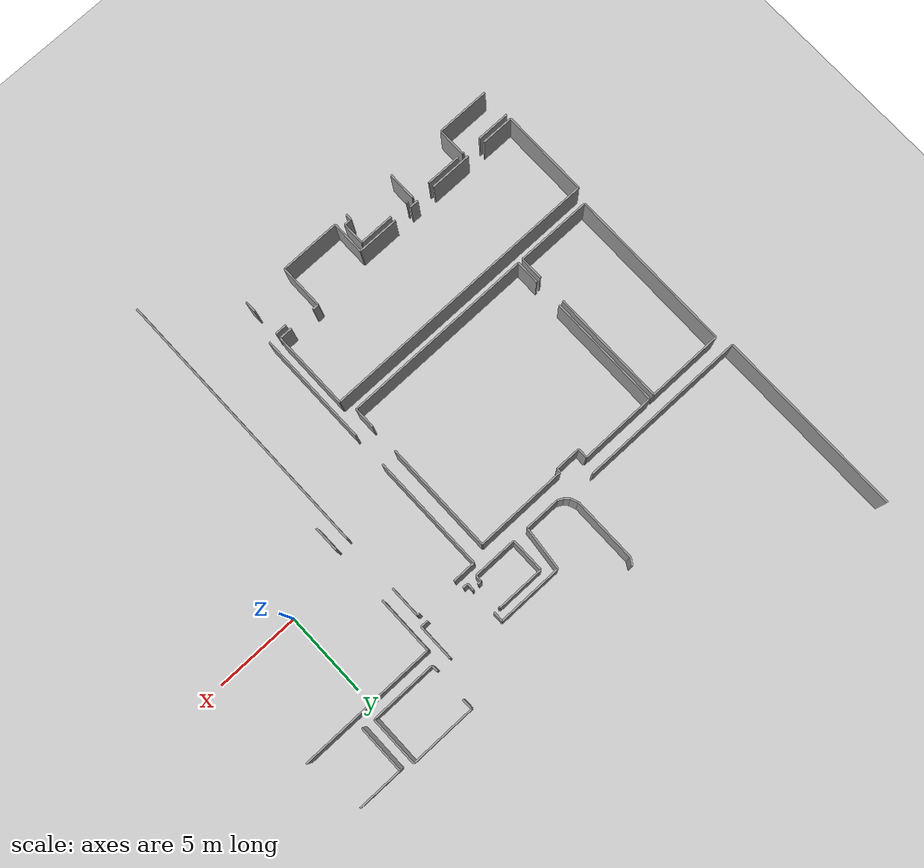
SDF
<sdf version="1.6">
 <world name="default">
  <model name="ground_plane">
   <static>1</static>
   <link name="link">
    <collision name="collision">
     <geometry><plane><normal>0 0 1</normal><size>100 100</size></plane></geometry>
     <surface><friction><ode><mu>100</mu><mu2>50</mu2></ode></friction></surface>
    </collision>
    <visual name="visual">
     <cast_shadows>0</cast_shadows>
     <geometry><plane><normal>0 0 1</normal><size>100 100</size></plane></geometry>
     <material>
      <script><uri>file://media/materials/scripts/gazebo.material</uri><name>Gazebo/Grey</name></script>
     </material>
    </visual>
   </link>
  </model>
  <model name="0510045925_40">
   <static>1</static>
   <link name="Wall_719">
    <collision name="Wall_719_Collision">
     <geometry><box><size>11.333976295 0.1 2.5</size></box></geometry>
     <pose>5.66698814751 0 1.25 0 0 0</pose>
    </collision>
    <visual name="Wall_719_Visual">
     <pose>5.66698814751 0 1.25 0 0 0</pose>
     <geometry><box><size>11.333976295 0.1 2.5</size></box></geometry>
     <material>
      <script><uri>file://media/materials/scripts/gazebo.material</uri><name>Gazebo/Grey</name></script>
      <ambient>1 1 1 1</ambient>
     </material>
    </visual>
    <pose>107.627775945 -95.8355625492 0 0 0 1.57079632679</pose>
   </link>
   <link name="Wall_730">
    <collision name="Wall_730_Collision">
     <geometry><box><size>10.0053723855 0.1 2.5</size></box></geometry>
     <pose>5.00268619273 0 1.25 0 0 0</pose>
    </collision>
    <visual name="Wall_730_Visual">
     <pose>5.00268619273 0 1.25 0 0 0</pose>
     <geometry><box><size>10.0053723855 0.1 2.5</size></box></geometry>
     <material>
      <script><uri>file://media/materials/scripts/gazebo.material</uri><name>Gazebo/Grey</name></script>
      <ambient>1 1 1 1</ambient>
     </material>
    </visual>
    <pose>117.633105759 -95.8647496256 0 0 0 3.13867550901</pose>
   </link>
   <link name="Wall_869">
    <collision name="Wall_869_Collision">
     <geometry><box><size>2.08624146595 0.1 2.5</size></box></geometry>
     <pose>1.04312073298 0 1.25 0 0 0</pose>
    </collision>
    <visual name="Wall_869_Visual">
     <pose>1.04312073298 0 1.25 0 0 0</pose>
     <geometry><box><size>2.08624146595 0.1 2.5</size></box></geometry>
     <material>
      <script><uri>file://media/materials/scripts/gazebo.material</uri><name>Gazebo/Grey</name></script>
      <ambient>1 1 1 1</ambient>
     </material>
    </visual>
    <pose>122.008375422 -96.104591254 0 0 0 3.14159265359</pose>
   </link>
   <link name="Wall_870">
    <collision name="Wall_870_Collision">
     <geometry><box><size>0.365606354794 0.1 2.5</size></box></geometry>
     <pose>0.182803177397 0 1.25 0 0 0</pose>
    </collision>
    <visual name="Wall_870_Visual">
     <pose>0.182803177397 0 1.25 0 0 0</pose>
     <geometry><box><size>0.365606354794 0.1 2.5</size></box></geometry>
     <material>
      <script><uri>file://media/materials/scripts/gazebo.material</uri><name>Gazebo/Grey</name></script>
      <ambient>1 1 1 1</ambient>
     </material>
    </visual>
    <pose>119.922133956 -96.104591254 0 0 0 2.66956275101</pose>
   </link>
   <link name="Wall_871">
    <collision name="Wall_871_Collision">
     <geometry><box><size>0.332547157772 0.1 2.5</size></box></geometry>
     <pose>0.166273578886 0 1.25 0 0 0</pose>
    </collision>
    <visual name="Wall_871_Visual">
     <pose>0.166273578886 0 1.25 0 0 0</pose>
     <geometry><box><size>0.332547157772 0.1 2.5</size></box></geometry>
     <material>
      <script><uri>file://media/materials/scripts/gazebo.material</uri><name>Gazebo/Grey</name></script>
      <ambient>1 1 1 1</ambient>
     </material>
    </visual>
    <pose>119.596507703 -95.9383518185 0 0 0 2.35673415555</pose>
   </link>
   <link name="Wall_872">
    <collision name="Wall_872_Collision">
     <geometry><box><size>0.451823995962 0.1 2.5</size></box></geometry>
     <pose>0.225911997981 0 1.25 0 0 0</pose>
    </collision>
    <visual name="Wall_872_Visual">
     <pose>0.225911997981 0 1.25 0 0 0</pose>
     <geometry><box><size>0.451823995962 0.1 2.5</size></box></geometry>
     <material>
      <script><uri>file://media/materials/scripts/gazebo.material</uri><name>Gazebo/Grey</name></script>
      <ambient>1 1 1 1</ambient>
     </material>
    </visual>
    <pose>119.361234486 -95.7033324027 0 0 0 1.96455041623</pose>
   </link>
   <link name="Wall_873">
    <collision name="Wall_873_Collision">
     <geometry><box><size>3.82959823355 0.1 2.5</size></box></geometry>
     <pose>1.91479911677 0 1.25 0 0 0</pose>
    </collision>
    <visual name="Wall_873_Visual">
     <pose>1.91479911677 0 1.25 0 0 0</pose>
     <geometry><box><size>3.82959823355 0.1 2.5</size></box></geometry>
     <material>
      <script><uri>file://media/materials/scripts/gazebo.material</uri><name>Gazebo/Grey</name></script>
      <ambient>1 1 1 1</ambient>
     </material>
    </visual>
    <pose>119.187888632 -95.2860841095 0 0 0 1.57079632679</pose>
   </link>
   <link name="Wall_874">
    <collision name="Wall_874_Collision">
     <geometry><box><size>0.487473385201 0.1 2.5</size></box></geometry>
     <pose>0.243736692601 0 1.25 0 0 0</pose>
    </collision>
    <visual name="Wall_874_Visual">
     <pose>0.243736692601 0 1.25 0 0 0</pose>
     <geometry><box><size>0.487473385201 0.1 2.5</size></box></geometry>
     <material>
      <script><uri>file://media/materials/scripts/gazebo.material</uri><name>Gazebo/Grey</name></script>
      <ambient>1 1 1 1</ambient>
     </material>
    </visual>
    <pose>119.187888632 -91.456485876 0 0 0 1.03957381696</pose>
   </link>
   <link name="Wall_880">
    <collision name="Wall_880_Collision">
     <geometry><box><size>2.16085886145 0.1 2.5</size></box></geometry>
     <pose>1.08042943073 0 1.25 0 0 0</pose>
    </collision>
    <visual name="Wall_880_Visual">
     <pose>1.08042943073 0 1.25 0 0 0</pose>
     <geometry><box><size>2.16085886145 0.1 2.5</size></box></geometry>
     <material>
      <script><uri>file://media/materials/scripts/gazebo.material</uri><name>Gazebo/Grey</name></script>
      <ambient>1 1 1 1</ambient>
     </material>
    </visual>
    <pose>129.345752646 -93.934341768 0 0 0 -1.57079632679</pose>
   </link>
   <link name="Wall_881">
    <collision name="Wall_881_Collision">
     <geometry><box><size>0.443389761681 0.1 2.5</size></box></geometry>
     <pose>0.221694880841 0 1.25 0 0 0</pose>
    </collision>
    <visual name="Wall_881_Visual">
     <pose>0.221694880841 0 1.25 0 0 0</pose>
     <geometry><box><size>0.443389761681 0.1 2.5</size></box></geometry>
     <material>
      <script><uri>file://media/materials/scripts/gazebo.material</uri><name>Gazebo/Grey</name></script>
      <ambient>1 1 1 1</ambient>
     </material>
    </visual>
    <pose>129.345752646 -96.0952006294 0 0 0 3.14159265359</pose>
   </link>
   <link name="Wall_882">
    <collision name="Wall_882_Collision">
     <geometry><box><size>0.309636811248 0.1 2.5</size></box></geometry>
     <pose>0.154818405624 0 1.25 0 0 0</pose>
    </collision>
    <visual name="Wall_882_Visual">
     <pose>0.154818405624 0 1.25 0 0 0</pose>
     <geometry><box><size>0.309636811248 0.1 2.5</size></box></geometry>
     <material>
      <script><uri>file://media/materials/scripts/gazebo.material</uri><name>Gazebo/Grey</name></script>
      <ambient>1 1 1 1</ambient>
     </material>
    </visual>
    <pose>126.469683511 -96.0952006294 0 0 0 3.14159265359</pose>
   </link>
   <link name="Wall_883">
    <collision name="Wall_883_Collision">
     <geometry><box><size>0.429176924444 0.1 2.5</size></box></geometry>
     <pose>0.214588462222 0 1.25 0 0 0</pose>
    </collision>
    <visual name="Wall_883_Visual">
     <pose>0.214588462222 0 1.25 0 0 0</pose>
     <geometry><box><size>0.429176924444 0.1 2.5</size></box></geometry>
     <material>
      <script><uri>file://media/materials/scripts/gazebo.material</uri><name>Gazebo/Grey</name></script>
      <ambient>1 1 1 1</ambient>
     </material>
    </visual>
    <pose>126.160046699 -96.0952006294 0 0 0 1.57079632679</pose>
   </link>
   <link name="Wall_884">
    <collision name="Wall_884_Collision">
     <geometry><box><size>0.60252277861 0.1 2.5</size></box></geometry>
     <pose>0.301261389305 0 1.25 0 0 0</pose>
    </collision>
    <visual name="Wall_884_Visual">
     <pose>0.301261389305 0 1.25 0 0 0</pose>
     <geometry><box><size>0.60252277861 0.1 2.5</size></box></geometry>
     <material>
      <script><uri>file://media/materials/scripts/gazebo.material</uri><name>Gazebo/Grey</name></script>
      <ambient>1 1 1 1</ambient>
     </material>
    </visual>
    <pose>126.160046699 -94.1317986853 0 0 0 1.57079632679</pose>
   </link>
   <link name="Wall_885">
    <collision name="Wall_885_Collision">
     <geometry><box><size>3.87325194792 0.1 2.5</size></box></geometry>
     <pose>1.93662597396 0 1.25 0 0 0</pose>
    </collision>
    <visual name="Wall_885_Visual">
     <pose>1.93662597396 0 1.25 0 0 0</pose>
     <geometry><box><size>3.87325194792 0.1 2.5</size></box></geometry>
     <material>
      <script><uri>file://media/materials/scripts/gazebo.material</uri><name>Gazebo/Grey</name></script>
      <ambient>1 1 1 1</ambient>
     </material>
    </visual>
    <pose>126.160046699 -93.5292759067 0 0 0 3.14159265359</pose>
   </link>
   <link name="Wall_886">
    <collision name="Wall_886_Collision">
     <geometry><box><size>2.59032169068 0.1 2.5</size></box></geometry>
     <pose>1.29516084534 0 1.25 0 0 0</pose>
    </collision>
    <visual name="Wall_886_Visual">
     <pose>1.29516084534 0 1.25 0 0 0</pose>
     <geometry><box><size>2.59032169068 0.1 2.5</size></box></geometry>
     <material>
      <script><uri>file://media/materials/scripts/gazebo.material</uri><name>Gazebo/Grey</name></script>
      <ambient>1 1 1 1</ambient>
     </material>
    </visual>
    <pose>122.286794751 -93.5292759067 0 0 0 -1.67848883041</pose>
   </link>
   <link name="Wall_887">
    <collision name="Wall_887_Collision">
     <geometry><box><size>2.01720768508 0.1 2.5</size></box></geometry>
     <pose>1.00860384254 0 1.25 0 0 0</pose>
    </collision>
    <visual name="Wall_887_Visual">
     <pose>1.00860384254 0 1.25 0 0 0</pose>
     <geometry><box><size>2.01720768508 0.1 2.5</size></box></geometry>
     <material>
      <script><uri>file://media/materials/scripts/gazebo.material</uri><name>Gazebo/Grey</name></script>
      <ambient>1 1 1 1</ambient>
     </material>
    </visual>
    <pose>122.95809751 -96.102307048 0 0 0 1.57079632679</pose>
   </link>
   <link name="Wall_888">
    <collision name="Wall_888_Collision">
     <geometry><box><size>2.8362224309 0.1 2.5</size></box></geometry>
     <pose>1.41811121545 0 1.25 0 0 0</pose>
    </collision>
    <visual name="Wall_888_Visual">
     <pose>1.41811121545 0 1.25 0 0 0</pose>
     <geometry><box><size>2.8362224309 0.1 2.5</size></box></geometry>
     <material>
      <script><uri>file://media/materials/scripts/gazebo.material</uri><name>Gazebo/Grey</name></script>
      <ambient>1 1 1 1</ambient>
     </material>
    </visual>
    <pose>122.95809751 -94.085099363 0 0 0 0.0</pose>
   </link>
   <link name="Wall_889">
    <collision name="Wall_889_Collision">
     <geometry><box><size>0.0936524453694 0.1 2.5</size></box></geometry>
     <pose>0.0468262226847 0 1.25 0 0 0</pose>
    </collision>
    <visual name="Wall_889_Visual">
     <pose>0.0468262226847 0 1.25 0 0 0</pose>
     <geometry><box><size>0.0936524453694 0.1 2.5</size></box></geometry>
     <material>
      <script><uri>file://media/materials/scripts/gazebo.material</uri><name>Gazebo/Grey</name></script>
      <ambient>1 1 1 1</ambient>
     </material>
    </visual>
    <pose>125.794319941 -94.085099363 0 0 0 -1.57079632679</pose>
   </link>
   <link name="Wall_890">
    <collision name="Wall_890_Collision">
     <geometry><box><size>0.218268571864 0.1 2.5</size></box></geometry>
     <pose>0.109134285932 0 1.25 0 0 0</pose>
    </collision>
    <visual name="Wall_890_Visual">
     <pose>0.109134285932 0 1.25 0 0 0</pose>
     <geometry><box><size>0.218268571864 0.1 2.5</size></box></geometry>
     <material>
      <script><uri>file://media/materials/scripts/gazebo.material</uri><name>Gazebo/Grey</name></script>
      <ambient>1 1 1 1</ambient>
     </material>
    </visual>
    <pose>125.794319941 -95.7170376386 0 0 0 3.14159265359</pose>
   </link>
   <link name="Wall_891">
    <collision name="Wall_891_Collision">
     <geometry><box><size>0.392883429355 0.1 2.5</size></box></geometry>
     <pose>0.196441714677 0 1.25 0 0 0</pose>
    </collision>
    <visual name="Wall_891_Visual">
     <pose>0.196441714677 0 1.25 0 0 0</pose>
     <geometry><box><size>0.392883429355 0.1 2.5</size></box></geometry>
     <material>
      <script><uri>file://media/materials/scripts/gazebo.material</uri><name>Gazebo/Grey</name></script>
      <ambient>1 1 1 1</ambient>
     </material>
    </visual>
    <pose>125.576051369 -95.7170376386 0 0 0 -1.57079632679</pose>
   </link>
   <link name="Wall_892">
    <collision name="Wall_892_Collision">
     <geometry><box><size>2.61796493127 0.1 2.5</size></box></geometry>
     <pose>1.30898246563 0 1.25 0 0 0</pose>
    </collision>
    <visual name="Wall_892_Visual">
     <pose>1.30898246563 0 1.25 0 0 0</pose>
     <geometry><box><size>2.61796493127 0.1 2.5</size></box></geometry>
     <material>
      <script><uri>file://media/materials/scripts/gazebo.material</uri><name>Gazebo/Grey</name></script>
      <ambient>1 1 1 1</ambient>
     </material>
    </visual>
    <pose>125.576051369 -96.109921068 0 0 0 3.13868427594</pose>
   </link>
   <link name="Wall_893">
    <collision name="Wall_893_Collision">
     <geometry><box><size>3.90827643968 0.1 2.5</size></box></geometry>
     <pose>1.95413821984 0 1.25 0 0 0</pose>
    </collision>
    <visual name="Wall_893_Visual">
     <pose>1.95413821984 0 1.25 0 0 0</pose>
     <geometry><box><size>3.90827643968 0.1 2.5</size></box></geometry>
     <material>
      <script><uri>file://media/materials/scripts/gazebo.material</uri><name>Gazebo/Grey</name></script>
      <ambient>1 1 1 1</ambient>
     </material>
    </visual>
    <pose>130.250552016 -91.3686708459 0 0 0 0.0</pose>
   </link>
   <link name="Wall_894">
    <collision name="Wall_894_Collision">
     <geometry><box><size>2.93190528159 0.1 2.5</size></box></geometry>
     <pose>1.4659526408 0 1.25 0 0 0</pose>
    </collision>
    <visual name="Wall_894_Visual">
     <pose>1.4659526408 0 1.25 0 0 0</pose>
     <geometry><box><size>2.93190528159 0.1 2.5</size></box></geometry>
     <material>
      <script><uri>file://media/materials/scripts/gazebo.material</uri><name>Gazebo/Grey</name></script>
      <ambient>1 1 1 1</ambient>
     </material>
    </visual>
    <pose>134.158828456 -91.3686708459 0 0 0 -1.57079632679</pose>
   </link>
   <link name="Wall_895">
    <collision name="Wall_895_Collision">
     <geometry><box><size>3.90751503769 0.1 2.5</size></box></geometry>
     <pose>1.95375751884 0 1.25 0 0 0</pose>
    </collision>
    <visual name="Wall_895_Visual">
     <pose>1.95375751884 0 1.25 0 0 0</pose>
     <geometry><box><size>3.90751503769 0.1 2.5</size></box></geometry>
     <material>
      <script><uri>file://media/materials/scripts/gazebo.material</uri><name>Gazebo/Grey</name></script>
      <ambient>1 1 1 1</ambient>
     </material>
    </visual>
    <pose>134.158828456 -94.3005761275 0 0 0 3.14159265359</pose>
   </link>
   <link name="Wall_896">
    <collision name="Wall_896_Collision">
     <geometry><box><size>0.383746605416 0.1 2.5</size></box></geometry>
     <pose>0.191873302708 0 1.25 0 0 0</pose>
    </collision>
    <visual name="Wall_896_Visual">
     <pose>0.191873302708 0 1.25 0 0 0</pose>
     <geometry><box><size>0.383746605416 0.1 2.5</size></box></geometry>
     <material>
      <script><uri>file://media/materials/scripts/gazebo.material</uri><name>Gazebo/Grey</name></script>
      <ambient>1 1 1 1</ambient>
     </material>
    </visual>
    <pose>130.251313418 -94.3005761275 0 0 0 1.57079632679</pose>
   </link>
   <link name="Wall_897">
    <collision name="Wall_897_Collision">
     <geometry><box><size>0.649222547445 0.1 2.5</size></box></geometry>
     <pose>0.324611273722 0 1.25 0 0 0</pose>
    </collision>
    <visual name="Wall_897_Visual">
     <pose>0.324611273722 0 1.25 0 0 0</pose>
     <geometry><box><size>0.649222547445 0.1 2.5</size></box></geometry>
     <material>
      <script><uri>file://media/materials/scripts/gazebo.material</uri><name>Gazebo/Grey</name></script>
      <ambient>1 1 1 1</ambient>
     </material>
    </visual>
    <pose>130.251313418 -92.0178929469 0 0 0 1.5719691175</pose>
   </link>
   <link name="Wall_898">
    <collision name="Wall_898_Collision">
     <geometry><box><size>2.8471358595 0.1 2.5</size></box></geometry>
     <pose>1.42356792975 0 1.25 0 0 0</pose>
    </collision>
    <visual name="Wall_898_Visual">
     <pose>1.42356792975 0 1.25 0 0 0</pose>
     <geometry><box><size>2.8471358595 0.1 2.5</size></box></geometry>
     <material>
      <script><uri>file://media/materials/scripts/gazebo.material</uri><name>Gazebo/Grey</name></script>
      <ambient>1 1 1 1</ambient>
     </material>
    </visual>
    <pose>134.890028172 -94.4264612573 0 0 0 1.57079632679</pose>
   </link>
   <link name="Wall_899">
    <collision name="Wall_899_Collision">
     <geometry><box><size>2.66236897541 0.1 2.5</size></box></geometry>
     <pose>1.3311844877 0 1.25 0 0 0</pose>
    </collision>
    <visual name="Wall_899_Visual">
     <pose>1.3311844877 0 1.25 0 0 0</pose>
     <geometry><box><size>2.66236897541 0.1 2.5</size></box></geometry>
     <material>
      <script><uri>file://media/materials/scripts/gazebo.material</uri><name>Gazebo/Grey</name></script>
      <ambient>1 1 1 1</ambient>
     </material>
    </visual>
    <pose>134.890028172 -91.5793253978 0 0 0 0.0</pose>
   </link>
   <link name="Wall_916">
    <collision name="Wall_916_Collision">
     <geometry><box><size>1.51671277379 0.1 2.5</size></box></geometry>
     <pose>0.758356386894 0 1.25 0 0 0</pose>
    </collision>
    <visual name="Wall_916_Visual">
     <pose>0.758356386894 0 1.25 0 0 0</pose>
     <geometry><box><size>1.51671277379 0.1 2.5</size></box></geometry>
     <material>
      <script><uri>file://media/materials/scripts/gazebo.material</uri><name>Gazebo/Grey</name></script>
      <ambient>1 1 1 1</ambient>
     </material>
    </visual>
    <pose>129.896753889 -103.425471435 0 0 0 1.57079632679</pose>
   </link>
   <link name="Wall_917">
    <collision name="Wall_917_Collision">
     <geometry><box><size>3.42605517626 0.1 2.5</size></box></geometry>
     <pose>1.71302758813 0 1.25 0 0 0</pose>
    </collision>
    <visual name="Wall_917_Visual">
     <pose>1.71302758813 0 1.25 0 0 0</pose>
     <geometry><box><size>3.42605517626 0.1 2.5</size></box></geometry>
     <material>
      <script><uri>file://media/materials/scripts/gazebo.material</uri><name>Gazebo/Grey</name></script>
      <ambient>1 1 1 1</ambient>
     </material>
    </visual>
    <pose>129.896753889 -98.4240755311 0 0 0 1.57079632679</pose>
   </link>
   <link name="Wall_918">
    <collision name="Wall_918_Collision">
     <geometry><box><size>8.1733966143 0.1 2.5</size></box></geometry>
     <pose>4.08669830715 0 1.25 0 0 0</pose>
    </collision>
    <visual name="Wall_918_Visual">
     <pose>4.08669830715 0 1.25 0 0 0</pose>
     <geometry><box><size>8.1733966143 0.1 2.5</size></box></geometry>
     <material>
      <script><uri>file://media/materials/scripts/gazebo.material</uri><name>Gazebo/Grey</name></script>
      <ambient>1 1 1 1</ambient>
     </material>
    </visual>
    <pose>129.896753889 -94.9980203548 0 0 0 0.0</pose>
   </link>
   <link name="Wall_1004">
    <collision name="Wall_1004_Collision">
     <geometry><box><size>9.95812289028 0.1 2.5</size></box></geometry>
     <pose>4.97906144514 0 1.25 0 0 0</pose>
    </collision>
    <visual name="Wall_1004_Visual">
     <pose>4.97906144514 0 1.25 0 0 0</pose>
     <geometry><box><size>9.95812289028 0.1 2.5</size></box></geometry>
     <material>
      <script><uri>file://media/materials/scripts/gazebo.material</uri><name>Gazebo/Grey</name></script>
      <ambient>1 1 1 1</ambient>
     </material>
    </visual>
    <pose>107.972944849 -106.659653308 0 0 0 1.57079632679</pose>
   </link>
   <link name="Wall_1005">
    <collision name="Wall_1005_Collision">
     <geometry><box><size>4.50140859369 0.1 2.5</size></box></geometry>
     <pose>2.25070429685 0 1.25 0 0 0</pose>
    </collision>
    <visual name="Wall_1005_Visual">
     <pose>2.25070429685 0 1.25 0 0 0</pose>
     <geometry><box><size>4.50140859369 0.1 2.5</size></box></geometry>
     <material>
      <script><uri>file://media/materials/scripts/gazebo.material</uri><name>Gazebo/Grey</name></script>
      <ambient>1 1 1 1</ambient>
     </material>
    </visual>
    <pose>107.972944849 -96.701530418 0 0 0 0.0</pose>
   </link>
   <link name="Wall_1006">
    <collision name="Wall_1006_Collision">
     <geometry><box><size>6.86936879775 0.1 2.5</size></box></geometry>
     <pose>3.43468439887 0 1.25 0 0 0</pose>
    </collision>
    <visual name="Wall_1006_Visual">
     <pose>3.43468439887 0 1.25 0 0 0</pose>
     <geometry><box><size>6.86936879775 0.1 2.5</size></box></geometry>
     <material>
      <script><uri>file://media/materials/scripts/gazebo.material</uri><name>Gazebo/Grey</name></script>
      <ambient>1 1 1 1</ambient>
     </material>
    </visual>
    <pose>112.474353443 -96.701530418 0 0 0 -1.57079632679</pose>
   </link>
   <link name="Wall_1007">
    <collision name="Wall_1007_Collision">
     <geometry><box><size>1.37356919875 0.1 2.5</size></box></geometry>
     <pose>0.686784599376 0 1.25 0 0 0</pose>
    </collision>
    <visual name="Wall_1007_Visual">
     <pose>0.686784599376 0 1.25 0 0 0</pose>
     <geometry><box><size>1.37356919875 0.1 2.5</size></box></geometry>
     <material>
      <script><uri>file://media/materials/scripts/gazebo.material</uri><name>Gazebo/Grey</name></script>
      <ambient>1 1 1 1</ambient>
     </material>
    </visual>
    <pose>112.474353443 -105.290906322 0 0 0 -1.57079632679</pose>
   </link>
   <link name="Wall_1008">
    <collision name="Wall_1008_Collision">
     <geometry><box><size>4.50141117663 0.1 2.5</size></box></geometry>
     <pose>2.25070558831 0 1.25 0 0 0</pose>
    </collision>
    <visual name="Wall_1008_Visual">
     <pose>2.25070558831 0 1.25 0 0 0</pose>
     <geometry><box><size>4.50141117663 0.1 2.5</size></box></geometry>
     <material>
      <script><uri>file://media/materials/scripts/gazebo.material</uri><name>Gazebo/Grey</name></script>
      <ambient>1 1 1 1</ambient>
     </material>
    </visual>
    <pose>112.474353443 -106.664475521 0 0 0 3.14052138652</pose>
   </link>
   <link name="Wall_1009">
    <collision name="Wall_1009_Collision">
     <geometry><box><size>1.41773051445 0.1 2.5</size></box></geometry>
     <pose>0.708865257227 0 1.25 0 0 0</pose>
    </collision>
    <visual name="Wall_1009_Visual">
     <pose>0.708865257227 0 1.25 0 0 0</pose>
     <geometry><box><size>1.41773051445 0.1 2.5</size></box></geometry>
     <material>
      <script><uri>file://media/materials/scripts/gazebo.material</uri><name>Gazebo/Grey</name></script>
      <ambient>1 1 1 1</ambient>
     </material>
    </visual>
    <pose>112.772315423 -106.663714119 0 0 0 1.57079632679</pose>
   </link>
   <link name="Wall_1010">
    <collision name="Wall_1010_Collision">
     <geometry><box><size>6.83688231263 0.1 2.5</size></box></geometry>
     <pose>3.41844115632 0 1.25 0 0 0</pose>
    </collision>
    <visual name="Wall_1010_Visual">
     <pose>3.41844115632 0 1.25 0 0 0</pose>
     <geometry><box><size>6.83688231263 0.1 2.5</size></box></geometry>
     <material>
      <script><uri>file://media/materials/scripts/gazebo.material</uri><name>Gazebo/Grey</name></script>
      <ambient>1 1 1 1</ambient>
     </material>
    </visual>
    <pose>112.772315423 -103.531052511 0 0 0 1.57079632679</pose>
   </link>
   <link name="Wall_1011">
    <collision name="Wall_1011_Collision">
     <geometry><box><size>4.52120504556 0.1 2.5</size></box></geometry>
     <pose>2.26060252278 0 1.25 0 0 0</pose>
    </collision>
    <visual name="Wall_1011_Visual">
     <pose>2.26060252278 0 1.25 0 0 0</pose>
     <geometry><box><size>4.52120504556 0.1 2.5</size></box></geometry>
     <material>
      <script><uri>file://media/materials/scripts/gazebo.material</uri><name>Gazebo/Grey</name></script>
      <ambient>1 1 1 1</ambient>
     </material>
    </visual>
    <pose>112.772315423 -96.6941701987 0 0 0 0.0</pose>
   </link>
   <link name="Wall_1012">
    <collision name="Wall_1012_Collision">
     <geometry><box><size>0.595923961321 0.1 2.5</size></box></geometry>
     <pose>0.29796198066 0 1.25 0 0 0</pose>
    </collision>
    <visual name="Wall_1012_Visual">
     <pose>0.29796198066 0 1.25 0 0 0</pose>
     <geometry><box><size>0.595923961321 0.1 2.5</size></box></geometry>
     <material>
      <script><uri>file://media/materials/scripts/gazebo.material</uri><name>Gazebo/Grey</name></script>
      <ambient>1 1 1 1</ambient>
     </material>
    </visual>
    <pose>117.293520469 -96.6941701987 0 0 0 -1.57079632679</pose>
   </link>
   <link name="Wall_1013">
    <collision name="Wall_1013_Collision">
     <geometry><box><size>1.5101139565 0.1 2.5</size></box></geometry>
     <pose>0.755056978249 0 1.25 0 0 0</pose>
    </collision>
    <visual name="Wall_1013_Visual">
     <pose>0.755056978249 0 1.25 0 0 0</pose>
     <geometry><box><size>1.5101139565 0.1 2.5</size></box></geometry>
     <material>
      <script><uri>file://media/materials/scripts/gazebo.material</uri><name>Gazebo/Grey</name></script>
      <ambient>1 1 1 1</ambient>
     </material>
    </visual>
    <pose>117.293520469 -97.29009416 0 0 0 0.0</pose>
   </link>
   <link name="Wall_1014">
    <collision name="Wall_1014_Collision">
     <geometry><box><size>0.227659196467 0.1 2.5</size></box></geometry>
     <pose>0.113829598234 0 1.25 0 0 0</pose>
    </collision>
    <visual name="Wall_1014_Visual">
     <pose>0.113829598234 0 1.25 0 0 0</pose>
     <geometry><box><size>0.227659196467 0.1 2.5</size></box></geometry>
     <material>
      <script><uri>file://media/materials/scripts/gazebo.material</uri><name>Gazebo/Grey</name></script>
      <ambient>1 1 1 1</ambient>
     </material>
    </visual>
    <pose>118.803634426 -97.29009416 0 0 0 1.57079632679</pose>
   </link>
   <link name="Wall_1015">
    <collision name="Wall_1015_Collision">
     <geometry><box><size>5.45798329992 0.1 2.5</size></box></geometry>
     <pose>2.72899164996 0 1.25 0 0 0</pose>
    </collision>
    <visual name="Wall_1015_Visual">
     <pose>2.72899164996 0 1.25 0 0 0</pose>
     <geometry><box><size>5.45798329992 0.1 2.5</size></box></geometry>
     <material>
      <script><uri>file://media/materials/scripts/gazebo.material</uri><name>Gazebo/Grey</name></script>
      <ambient>1 1 1 1</ambient>
     </material>
    </visual>
    <pose>118.803634426 -97.0624349636 0 0 0 0.0</pose>
   </link>
   <link name="Wall_1016">
    <collision name="Wall_1016_Collision">
     <geometry><box><size>6.61353772747 0.1 2.5</size></box></geometry>
     <pose>3.30676886373 0 1.25 0 0 0</pose>
    </collision>
    <visual name="Wall_1016_Visual">
     <pose>3.30676886373 0 1.25 0 0 0</pose>
     <geometry><box><size>6.61353772747 0.1 2.5</size></box></geometry>
     <material>
      <script><uri>file://media/materials/scripts/gazebo.material</uri><name>Gazebo/Grey</name></script>
      <ambient>1 1 1 1</ambient>
     </material>
    </visual>
    <pose>124.261617725 -97.0624349636 0 0 0 -1.57079632679</pose>
   </link>
   <link name="Wall_1017">
    <collision name="Wall_1017_Collision">
     <geometry><box><size>1.25707469354 0.1 2.5</size></box></geometry>
     <pose>0.628537346768 0 1.25 0 0 0</pose>
    </collision>
    <visual name="Wall_1017_Visual">
     <pose>0.628537346768 0 1.25 0 0 0</pose>
     <geometry><box><size>1.25707469354 0.1 2.5</size></box></geometry>
     <material>
      <script><uri>file://media/materials/scripts/gazebo.material</uri><name>Gazebo/Grey</name></script>
      <ambient>1 1 1 1</ambient>
     </material>
    </visual>
    <pose>124.261617725 -105.385827771 0 0 0 -1.57079632679</pose>
   </link>
   <link name="Wall_1018">
    <collision name="Wall_1018_Collision">
     <geometry><box><size>11.489321151 0.1 2.5</size></box></geometry>
     <pose>5.74466057551 0 1.25 0 0 0</pose>
    </collision>
    <visual name="Wall_1018_Visual">
     <pose>5.74466057551 0 1.25 0 0 0</pose>
     <geometry><box><size>11.489321151 0.1 2.5</size></box></geometry>
     <material>
      <script><uri>file://media/materials/scripts/gazebo.material</uri><name>Gazebo/Grey</name></script>
      <ambient>1 1 1 1</ambient>
     </material>
    </visual>
    <pose>124.261617725 -106.642902464 0 0 0 -3.13978126146</pose>
   </link>
   <link name="Wall_1020">
    <collision name="Wall_1020_Collision">
     <geometry><box><size>1.99639603056 0.1 2.5</size></box></geometry>
     <pose>0.998198015279 0 1.25 0 0 0</pose>
    </collision>
    <visual name="Wall_1020_Visual">
     <pose>0.998198015279 0 1.25 0 0 0</pose>
     <geometry><box><size>1.99639603056 0.1 2.5</size></box></geometry>
     <material>
      <script><uri>file://media/materials/scripts/gazebo.material</uri><name>Gazebo/Grey</name></script>
      <ambient>1 1 1 1</ambient>
     </material>
    </visual>
    <pose>107.613309307 -113.113042816 0 0 0 0.0</pose>
   </link>
   <link name="Wall_1021">
    <collision name="Wall_1021_Collision">
     <geometry><box><size>0.109134285932 0.1 2.5</size></box></geometry>
     <pose>0.0545671429659 0 1.25 0 0 0</pose>
    </collision>
    <visual name="Wall_1021_Visual">
     <pose>0.0545671429659 0 1.25 0 0 0</pose>
     <geometry><box><size>0.109134285932 0.1 2.5</size></box></geometry>
     <material>
      <script><uri>file://media/materials/scripts/gazebo.material</uri><name>Gazebo/Grey</name></script>
      <ambient>1 1 1 1</ambient>
     </material>
    </visual>
    <pose>110.71754524 -113.113042816 0 0 0 0.0</pose>
   </link>
   <link name="Wall_1022">
    <collision name="Wall_1022_Collision">
     <geometry><box><size>1.7085860765 0.1 2.5</size></box></geometry>
     <pose>0.854293038248 0 1.25 0 0 0</pose>
    </collision>
    <visual name="Wall_1022_Visual">
     <pose>0.854293038248 0 1.25 0 0 0</pose>
     <geometry><box><size>1.7085860765 0.1 2.5</size></box></geometry>
     <material>
      <script><uri>file://media/materials/scripts/gazebo.material</uri><name>Gazebo/Grey</name></script>
      <ambient>1 1 1 1</ambient>
     </material>
    </visual>
    <pose>110.826679526 -113.113042816 0 0 0 -1.57079632679</pose>
   </link>
   <link name="Wall_1023">
    <collision name="Wall_1023_Collision">
     <geometry><box><size>3.21338320872 0.1 2.5</size></box></geometry>
     <pose>1.60669160436 0 1.25 0 0 0</pose>
    </collision>
    <visual name="Wall_1023_Visual">
     <pose>1.60669160436 0 1.25 0 0 0</pose>
     <geometry><box><size>3.21338320872 0.1 2.5</size></box></geometry>
     <material>
      <script><uri>file://media/materials/scripts/gazebo.material</uri><name>Gazebo/Grey</name></script>
      <ambient>1 1 1 1</ambient>
     </material>
    </visual>
    <pose>110.826679526 -114.821628893 0 0 0 -3.13874928395</pose>
   </link>
   <link name="Wall_1025">
    <collision name="Wall_1025_Collision">
     <geometry><box><size>2.12101215705 0.1 2.5</size></box></geometry>
     <pose>1.06050607853 0 1.25 0 0 0</pose>
    </collision>
    <visual name="Wall_1025_Visual">
     <pose>1.06050607853 0 1.25 0 0 0</pose>
     <geometry><box><size>2.12101215705 0.1 2.5</size></box></geometry>
     <material>
      <script><uri>file://media/materials/scripts/gazebo.material</uri><name>Gazebo/Grey</name></script>
      <ambient>1 1 1 1</ambient>
     </material>
    </visual>
    <pose>111.141899952 -113.123702444 0 0 0 0.0</pose>
   </link>
   <link name="Wall_1026">
    <collision name="Wall_1026_Collision">
     <geometry><box><size>0.0502525316616 0.1 2.5</size></box></geometry>
     <pose>0.0251262658308 0 1.25 0 0 0</pose>
    </collision>
    <visual name="Wall_1026_Visual">
     <pose>0.0251262658308 0 1.25 0 0 0</pose>
     <geometry><box><size>0.0502525316616 0.1 2.5</size></box></geometry>
     <material>
      <script><uri>file://media/materials/scripts/gazebo.material</uri><name>Gazebo/Grey</name></script>
      <ambient>1 1 1 1</ambient>
     </material>
    </visual>
    <pose>114.377350829 -113.123702444 0 0 0 0.0</pose>
   </link>
   <link name="Wall_1027">
    <collision name="Wall_1027_Collision">
     <geometry><box><size>1.70122585721 0.1 2.5</size></box></geometry>
     <pose>0.850612928606 0 1.25 0 0 0</pose>
    </collision>
    <visual name="Wall_1027_Visual">
     <pose>0.850612928606 0 1.25 0 0 0</pose>
     <geometry><box><size>1.70122585721 0.1 2.5</size></box></geometry>
     <material>
      <script><uri>file://media/materials/scripts/gazebo.material</uri><name>Gazebo/Grey</name></script>
      <ambient>1 1 1 1</ambient>
     </material>
    </visual>
    <pose>114.42760336 -113.123702444 0 0 0 -1.57079632679</pose>
   </link>
   <link name="Wall_1030">
    <collision name="Wall_1030_Collision">
     <geometry><box><size>0.113195096571 0.1 2.5</size></box></geometry>
     <pose>0.0565975482856 0 1.25 0 0 0</pose>
    </collision>
    <visual name="Wall_1030_Visual">
     <pose>0.0565975482856 0 1.25 0 0 0</pose>
     <geometry><box><size>0.113195096571 0.1 2.5</size></box></geometry>
     <material>
      <script><uri>file://media/materials/scripts/gazebo.material</uri><name>Gazebo/Grey</name></script>
      <ambient>1 1 1 1</ambient>
     </material>
    </visual>
    <pose>114.768457653 -113.103652192 0 0 0 0.0</pose>
   </link>
   <link name="Wall_1031">
    <collision name="Wall_1031_Collision">
     <geometry><box><size>2.08243445598 0.1 2.5</size></box></geometry>
     <pose>1.04121722799 0 1.25 0 0 0</pose>
    </collision>
    <visual name="Wall_1031_Visual">
     <pose>1.04121722799 0 1.25 0 0 0</pose>
     <geometry><box><size>2.08243445598 0.1 2.5</size></box></geometry>
     <material>
      <script><uri>file://media/materials/scripts/gazebo.material</uri><name>Gazebo/Grey</name></script>
      <ambient>1 1 1 1</ambient>
     </material>
    </visual>
    <pose>115.978833025 -113.103652192 0 0 0 0.0</pose>
   </link>
   <link name="Wall_1032">
    <collision name="Wall_1032_Collision">
     <geometry><box><size>1.33930610898 0.1 2.5</size></box></geometry>
     <pose>0.669653054491 0 1.25 0 0 0</pose>
    </collision>
    <visual name="Wall_1032_Visual">
     <pose>0.669653054491 0 1.25 0 0 0</pose>
     <geometry><box><size>1.33930610898 0.1 2.5</size></box></geometry>
     <material>
      <script><uri>file://media/materials/scripts/gazebo.material</uri><name>Gazebo/Grey</name></script>
      <ambient>1 1 1 1</ambient>
     </material>
    </visual>
    <pose>118.061267481 -113.103652192 0 0 0 -1.57079632679</pose>
   </link>
   <link name="Wall_1033">
    <collision name="Wall_1033_Collision">
     <geometry><box><size>0.428415522449 0.1 2.5</size></box></geometry>
     <pose>0.214207761224 0 1.25 0 0 0</pose>
    </collision>
    <visual name="Wall_1033_Visual">
     <pose>0.214207761224 0 1.25 0 0 0</pose>
     <geometry><box><size>0.428415522449 0.1 2.5</size></box></geometry>
     <material>
      <script><uri>file://media/materials/scripts/gazebo.material</uri><name>Gazebo/Grey</name></script>
      <ambient>1 1 1 1</ambient>
     </material>
    </visual>
    <pose>118.061267481 -114.442958301 0 0 0 3.14159265359</pose>
   </link>
   <link name="Wall_1034">
    <collision name="Wall_1034_Collision">
     <geometry><box><size>0.379431994112 0.1 2.5</size></box></geometry>
     <pose>0.189715997056 0 1.25 0 0 0</pose>
    </collision>
    <visual name="Wall_1034_Visual">
     <pose>0.189715997056 0 1.25 0 0 0</pose>
     <geometry><box><size>0.379431994112 0.1 2.5</size></box></geometry>
     <material>
      <script><uri>file://media/materials/scripts/gazebo.material</uri><name>Gazebo/Grey</name></script>
      <ambient>1 1 1 1</ambient>
     </material>
    </visual>
    <pose>117.632851958 -114.442958301 0 0 0 -1.57079632679</pose>
   </link>
   <link name="Wall_1037">
    <collision name="Wall_1037_Collision">
     <geometry><box><size>0.701251237278 0.1 2.5</size></box></geometry>
     <pose>0.350625618639 0 1.25 0 0 0</pose>
    </collision>
    <visual name="Wall_1037_Visual">
     <pose>0.350625618639 0 1.25 0 0 0</pose>
     <geometry><box><size>0.701251237278 0.1 2.5</size></box></geometry>
     <material>
      <script><uri>file://media/materials/scripts/gazebo.material</uri><name>Gazebo/Grey</name></script>
      <ambient>1 1 1 1</ambient>
     </material>
    </visual>
    <pose>123.960610137 -112.479048755 0 0 0 0.0</pose>
   </link>
   <link name="Wall_1038">
    <collision name="Wall_1038_Collision">
     <geometry><box><size>0.688815004695 0.1 2.5</size></box></geometry>
     <pose>0.344407502348 0 1.25 0 0 0</pose>
    </collision>
    <visual name="Wall_1038_Visual">
     <pose>0.344407502348 0 1.25 0 0 0</pose>
     <geometry><box><size>0.688815004695 0.1 2.5</size></box></geometry>
     <material>
      <script><uri>file://media/materials/scripts/gazebo.material</uri><name>Gazebo/Grey</name></script>
      <ambient>1 1 1 1</ambient>
     </material>
    </visual>
    <pose>124.661861374 -114.146519124 0 0 0 -1.57079632679</pose>
   </link>
   <link name="Wall_1040">
    <collision name="Wall_1040_Collision">
     <geometry><box><size>5.29352046902 0.1 2.5</size></box></geometry>
     <pose>2.64676023451 0 1.25 0 0 0</pose>
    </collision>
    <visual name="Wall_1040_Visual">
     <pose>2.64676023451 0 1.25 0 0 0</pose>
     <geometry><box><size>5.29352046902 0.1 2.5</size></box></geometry>
     <material>
      <script><uri>file://media/materials/scripts/gazebo.material</uri><name>Gazebo/Grey</name></script>
      <ambient>1 1 1 1</ambient>
     </material>
    </visual>
    <pose>107.607979493 -112.801121799 0 0 0 1.57079632679</pose>
   </link>
   <link name="Wall_1041">
    <collision name="Wall_1041_Collision">
     <geometry><box><size>17.0338316286 0.1 2.5</size></box></geometry>
     <pose>8.51691581432 0 1.25 0 0 0</pose>
    </collision>
    <visual name="Wall_1041_Visual">
     <pose>8.51691581432 0 1.25 0 0 0</pose>
     <geometry><box><size>17.0338316286 0.1 2.5</size></box></geometry>
     <material>
      <script><uri>file://media/materials/scripts/gazebo.material</uri><name>Gazebo/Grey</name></script>
      <ambient>1 1 1 1</ambient>
     </material>
    </visual>
    <pose>107.607979493 -107.50760133 0 0 0 0.0</pose>
   </link>
   <link name="Wall_1042">
    <collision name="Wall_1042_Collision">
     <geometry><box><size>4.63769955077 0.1 2.5</size></box></geometry>
     <pose>2.31884977539 0 1.25 0 0 0</pose>
    </collision>
    <visual name="Wall_1042_Visual">
     <pose>2.31884977539 0 1.25 0 0 0</pose>
     <geometry><box><size>4.63769955077 0.1 2.5</size></box></geometry>
     <material>
      <script><uri>file://media/materials/scripts/gazebo.material</uri><name>Gazebo/Grey</name></script>
      <ambient>1 1 1 1</ambient>
     </material>
    </visual>
    <pose>124.641811122 -107.50760133 0 0 0 -1.57079632679</pose>
   </link>
   <link name="Wall_1043">
    <collision name="Wall_1043_Collision">
     <geometry><box><size>0.763686200858 0.1 2.5</size></box></geometry>
     <pose>0.381843100429 0 1.25 0 0 0</pose>
    </collision>
    <visual name="Wall_1043_Visual">
     <pose>0.381843100429 0 1.25 0 0 0</pose>
     <geometry><box><size>0.763686200858 0.1 2.5</size></box></geometry>
     <material>
      <script><uri>file://media/materials/scripts/gazebo.material</uri><name>Gazebo/Grey</name></script>
      <ambient>1 1 1 1</ambient>
     </material>
    </visual>
    <pose>124.641811122 -112.145300881 0 0 0 3.14159265359</pose>
   </link>
   <link name="Wall_1044">
    <collision name="Wall_1044_Collision">
     <geometry><box><size>0.376386386132 0.1 2.5</size></box></geometry>
     <pose>0.188193193066 0 1.25 0 0 0</pose>
    </collision>
    <visual name="Wall_1044_Visual">
     <pose>0.188193193066 0 1.25 0 0 0</pose>
     <geometry><box><size>0.376386386132 0.1 2.5</size></box></geometry>
     <material>
      <script><uri>file://media/materials/scripts/gazebo.material</uri><name>Gazebo/Grey</name></script>
      <ambient>1 1 1 1</ambient>
     </material>
    </visual>
    <pose>122.379178193 -112.145300881 0 0 0 3.14159265359</pose>
   </link>
   <link name="Wall_1045">
    <collision name="Wall_1045_Collision">
     <geometry><box><size>2.65830816477 0.1 2.5</size></box></geometry>
     <pose>1.32915408238 0 1.25 0 0 0</pose>
    </collision>
    <visual name="Wall_1045_Visual">
     <pose>1.32915408238 0 1.25 0 0 0</pose>
     <geometry><box><size>2.65830816477 0.1 2.5</size></box></geometry>
     <material>
      <script><uri>file://media/materials/scripts/gazebo.material</uri><name>Gazebo/Grey</name></script>
      <ambient>1 1 1 1</ambient>
     </material>
    </visual>
    <pose>122.002791807 -112.145300881 0 0 0 -1.57079632679</pose>
   </link>
   <link name="Wall_1046">
    <collision name="Wall_1046_Collision">
     <geometry><box><size>3.57782797391 0.1 2.5</size></box></geometry>
     <pose>1.78891398695 0 1.25 0 0 0</pose>
    </collision>
    <visual name="Wall_1046_Visual">
     <pose>1.78891398695 0 1.25 0 0 0</pose>
     <geometry><box><size>3.57782797391 0.1 2.5</size></box></geometry>
     <material>
      <script><uri>file://media/materials/scripts/gazebo.material</uri><name>Gazebo/Grey</name></script>
      <ambient>1 1 1 1</ambient>
     </material>
    </visual>
    <pose>122.002791807 -114.803609045 0 0 0 3.14159265359</pose>
   </link>
   <link name="Wall_1047">
    <collision name="Wall_1047_Collision">
     <geometry><box><size>2.00350244918 0.1 2.5</size></box></geometry>
     <pose>1.00175122459 0 1.25 0 0 0</pose>
    </collision>
    <visual name="Wall_1047_Visual">
     <pose>1.00175122459 0 1.25 0 0 0</pose>
     <geometry><box><size>2.00350244918 0.1 2.5</size></box></geometry>
     <material>
      <script><uri>file://media/materials/scripts/gazebo.material</uri><name>Gazebo/Grey</name></script>
      <ambient>1 1 1 1</ambient>
     </material>
    </visual>
    <pose>118.424963833 -114.803609045 0 0 0 1.57079632679</pose>
   </link>
   <link name="Wall_1048">
    <collision name="Wall_1048_Collision">
     <geometry><box><size>2.47201847669 0.1 2.5</size></box></geometry>
     <pose>1.23600923834 0 1.25 0 0 0</pose>
    </collision>
    <visual name="Wall_1048_Visual">
     <pose>1.23600923834 0 1.25 0 0 0</pose>
     <geometry><box><size>2.47201847669 0.1 2.5</size></box></geometry>
     <material>
      <script><uri>file://media/materials/scripts/gazebo.material</uri><name>Gazebo/Grey</name></script>
      <ambient>1 1 1 1</ambient>
     </material>
    </visual>
    <pose>118.424963833 -112.800106596 0 0 0 3.14159265359</pose>
   </link>
   <link name="Wall_1049">
    <collision name="Wall_1049_Collision">
     <geometry><box><size>0.521814167153 0.1 2.5</size></box></geometry>
     <pose>0.260907083577 0 1.25 0 0 0</pose>
    </collision>
    <visual name="Wall_1049_Visual">
     <pose>0.260907083577 0 1.25 0 0 0</pose>
     <geometry><box><size>0.521814167153 0.1 2.5</size></box></geometry>
     <material>
      <script><uri>file://media/materials/scripts/gazebo.material</uri><name>Gazebo/Grey</name></script>
      <ambient>1 1 1 1</ambient>
     </material>
    </visual>
    <pose>114.865155707 -112.800106596 0 0 0 3.14159265359</pose>
   </link>
   <link name="Wall_1050">
    <collision name="Wall_1050_Collision">
     <geometry><box><size>2.51491078907 0.1 2.5</size></box></geometry>
     <pose>1.25745539453 0 1.25 0 0 0</pose>
    </collision>
    <visual name="Wall_1050_Visual">
     <pose>1.25745539453 0 1.25 0 0 0</pose>
     <geometry><box><size>2.51491078907 0.1 2.5</size></box></geometry>
     <material>
      <script><uri>file://media/materials/scripts/gazebo.material</uri><name>Gazebo/Grey</name></script>
      <ambient>1 1 1 1</ambient>
     </material>
    </visual>
    <pose>113.22534961 -112.800106596 0 0 0 3.14159265359</pose>
   </link>
   <link name="Wall_1051">
    <collision name="Wall_1051_Collision">
     <geometry><box><size>1.97761504193 0.1 2.5</size></box></geometry>
     <pose>0.988807520963 0 1.25 0 0 0</pose>
    </collision>
    <visual name="Wall_1051_Visual">
     <pose>0.988807520963 0 1.25 0 0 0</pose>
     <geometry><box><size>1.97761504193 0.1 2.5</size></box></geometry>
     <material>
      <script><uri>file://media/materials/scripts/gazebo.material</uri><name>Gazebo/Grey</name></script>
      <ambient>1 1 1 1</ambient>
     </material>
    </visual>
    <pose>109.585594274 -112.800106596 0 0 0 -3.14107930661</pose>
   </link>
   <link name="Wall_1092">
    <collision name="Wall_1092_Collision">
     <geometry><box><size>1.36443237481 0.1 2.5</size></box></geometry>
     <pose>0.682216187406 0 1.25 0 0 0</pose>
    </collision>
    <visual name="Wall_1092_Visual">
     <pose>0.682216187406 0 1.25 0 0 0</pose>
     <geometry><box><size>1.36443237481 0.1 2.5</size></box></geometry>
     <material>
      <script><uri>file://media/materials/scripts/gazebo.material</uri><name>Gazebo/Grey</name></script>
      <ambient>1 1 1 1</ambient>
     </material>
    </visual>
    <pose>125.203725794 -96.6581305043 0 0 0 0.0</pose>
   </link>
   <link name="Wall_1093">
    <collision name="Wall_1093_Collision">
     <geometry><box><size>0.160655820918 0.1 2.5</size></box></geometry>
     <pose>0.0803279104591 0 1.25 0 0 0</pose>
    </collision>
    <visual name="Wall_1093_Visual">
     <pose>0.0803279104591 0 1.25 0 0 0</pose>
     <geometry><box><size>0.160655820918 0.1 2.5</size></box></geometry>
     <material>
      <script><uri>file://media/materials/scripts/gazebo.material</uri><name>Gazebo/Grey</name></script>
      <ambient>1 1 1 1</ambient>
     </material>
    </visual>
    <pose>128.947793203 -96.6581305043 0 0 0 0.0</pose>
   </link>
   <link name="Wall_1094">
    <collision name="Wall_1094_Collision">
     <geometry><box><size>1.8562980635 0.1 2.5</size></box></geometry>
     <pose>0.92814903175 0 1.25 0 0 0</pose>
    </collision>
    <visual name="Wall_1094_Visual">
     <pose>0.92814903175 0 1.25 0 0 0</pose>
     <geometry><box><size>1.8562980635 0.1 2.5</size></box></geometry>
     <material>
      <script><uri>file://media/materials/scripts/gazebo.material</uri><name>Gazebo/Grey</name></script>
      <ambient>1 1 1 1</ambient>
     </material>
    </visual>
    <pose>129.108449024 -96.6581305043 0 0 0 -1.57079632679</pose>
   </link>
   <link name="Wall_1095">
    <collision name="Wall_1095_Collision">
     <geometry><box><size>16.4906982056 0.1 2.5</size></box></geometry>
     <pose>8.24534910281 0 1.25 0 0 0</pose>
    </collision>
    <visual name="Wall_1095_Visual">
     <pose>8.24534910281 0 1.25 0 0 0</pose>
     <geometry><box><size>16.4906982056 0.1 2.5</size></box></geometry>
     <material>
      <script><uri>file://media/materials/scripts/gazebo.material</uri><name>Gazebo/Grey</name></script>
      <ambient>1 1 1 1</ambient>
     </material>
    </visual>
    <pose>129.108449024 -101.964848608 0 0 0 -1.57079632679</pose>
   </link>
   <link name="Wall_1107">
    <collision name="Wall_1107_Collision">
     <geometry><box><size>6.76302631913 0.1 2.5</size></box></geometry>
     <pose>3.38151315956 0 1.25 0 0 0</pose>
    </collision>
    <visual name="Wall_1107_Visual">
     <pose>3.38151315956 0 1.25 0 0 0</pose>
     <geometry><box><size>6.76302631913 0.1 2.5</size></box></geometry>
     <material>
      <script><uri>file://media/materials/scripts/gazebo.material</uri><name>Gazebo/Grey</name></script>
      <ambient>1 1 1 1</ambient>
     </material>
    </visual>
    <pose>125.205248598 -112.388695718 0 0 0 1.57079632679</pose>
   </link>
   <link name="Wall_1108">
    <collision name="Wall_1108_Collision">
     <geometry><box><size>6.93205772925 0.1 2.5</size></box></geometry>
     <pose>3.46602886463 0 1.25 0 0 0</pose>
    </collision>
    <visual name="Wall_1108_Visual">
     <pose>3.46602886463 0 1.25 0 0 0</pose>
     <geometry><box><size>6.93205772925 0.1 2.5</size></box></geometry>
     <material>
      <script><uri>file://media/materials/scripts/gazebo.material</uri><name>Gazebo/Grey</name></script>
      <ambient>1 1 1 1</ambient>
     </material>
    </visual>
    <pose>125.205248598 -103.590188066 0 0 0 1.5710160024</pose>
   </link>
   <pose>-133.95 101.083118449 0 0 0 0</pose>
  </model>
 </world>
</sdf>
